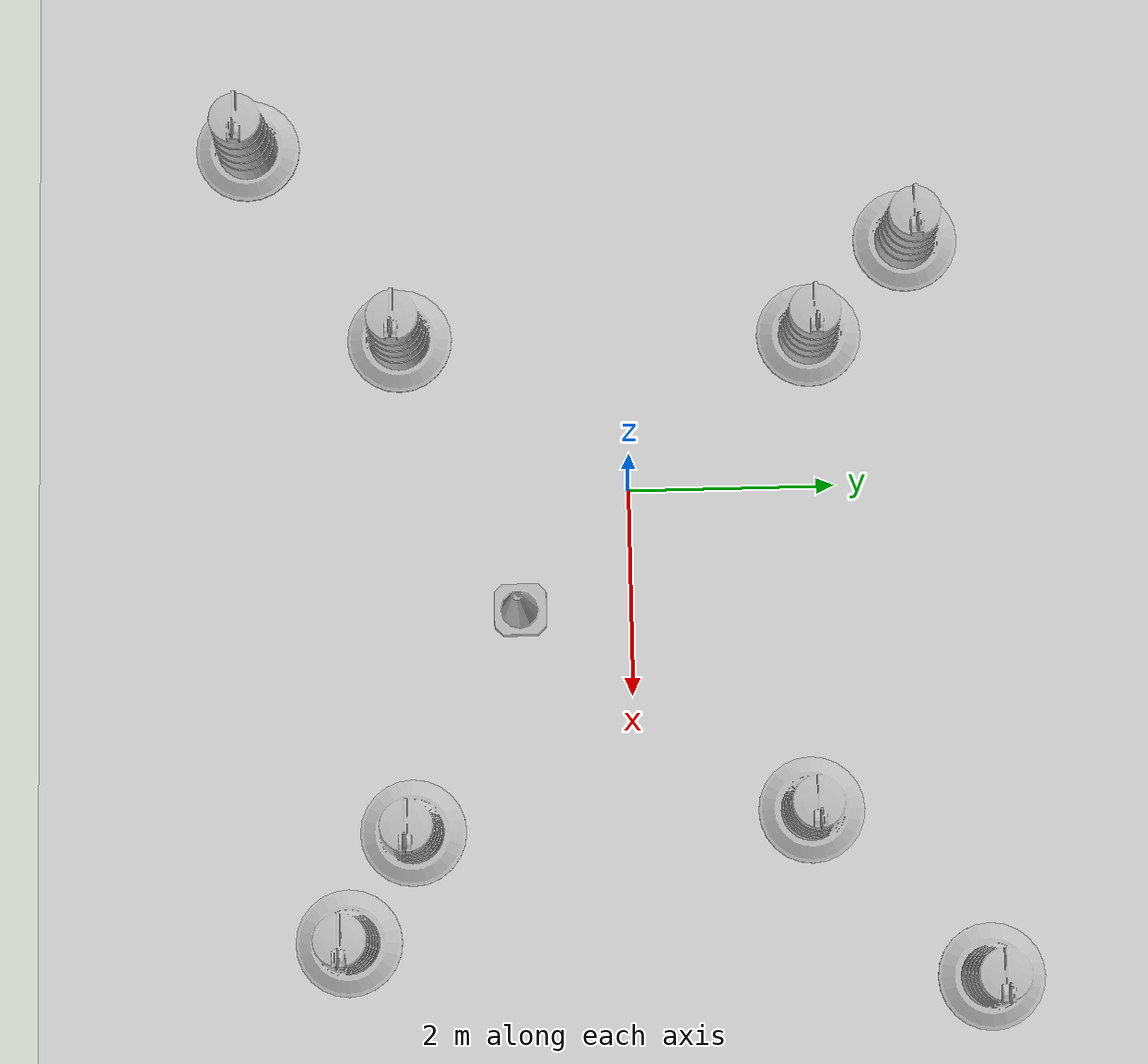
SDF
<sdf version="1.7">
 <world name="default">
  <light name="sun" type="directional">
   <pose>0 0 10 0 -0 0</pose>
   <diffuse>0.8 0.8 0.8 1</diffuse>
   <specular>0.2 0.2 0.2 1</specular>
   <attenuation>
    <range>1000</range>
    <constant>0.9</constant>
    <linear>0.01</linear>
    <quadratic>0.001</quadratic>
   </attenuation>
   <direction>-0.5 0.1 -0.9</direction>
   <spot><inner_angle>0</inner_angle><outer_angle>0</outer_angle><falloff>0</falloff></spot>
  </light>
  <model name="ground_plane">
   <static>1</static>
   <link name="link">
    <collision name="collision">
     <geometry><plane><normal>0 0 1</normal><size>100 100</size></plane></geometry>
     <surface>
      <contact><collide_bitmask>65535</collide_bitmask></contact>
      <friction><ode><mu>100</mu><mu2>50</mu2></ode></friction>
     </surface>
    </collision>
    <visual name="visual">
     <cast_shadows>0</cast_shadows>
     <geometry><plane><normal>0 0 1</normal><size>100 100</size></plane></geometry>
     <material>
      <script><uri>file://media/materials/scripts/gazebo.material</uri><name>Gazebo/Grey</name></script>
     </material>
    </visual>
   </link>
  </model>
  <gravity>0 0 -9.8</gravity>
  <magnetic_field>6e-06 2.3e-05 -4.2e-05</magnetic_field>
  <atmosphere type="adiabatic"/>
  <physics type="ode">
   <max_step_size>0.001</max_step_size>
   <real_time_factor>1</real_time_factor>
   <real_time_update_rate>1000</real_time_update_rate>
  </physics>
  <scene><ambient>0.4 0.4 0.4 1</ambient><background>0.7 0.7 0.7 1</background><shadows>1</shadows></scene>
  <audio><device>default</device></audio>
  <spherical_coordinates>
   <surface_model>EARTH_WGS84</surface_model>
   <latitude_deg>0</latitude_deg>
   <longitude_deg>0</longitude_deg>
   <elevation>0</elevation>
   <heading_deg>0</heading_deg>
  </spherical_coordinates>
  <model name="Construction Barrel">
   <link name="link">
    <inertial>
     <pose>0 0 0.4 0 -0 0</pose>
     <mass>500</mass>
     <inertia><ixx>51.2096</ixx><iyy>51.2096</iyy><izz>25</izz><ixy>0</ixy><ixz>0</ixz><iyz>0</iyz></inertia>
    </inertial>
    <collision name="collision">
     <geometry><mesh><uri>model://construction_barrel/meshes/construction_barrel.dae</uri></mesh></geometry>
    </collision>
    <visual name="visual">
     <geometry><mesh><uri>model://construction_barrel/meshes/construction_barrel.dae</uri></mesh></geometry>
    </visual>
   </link>
   <pose>-2.42444 2.77871 -2e-06 1e-06 8e-06 -1.9e-05</pose>
  </model>
  <model name="Construction Barrel_0">
   <link name="link">
    <inertial>
     <pose>0 0 0.4 0 -0 0</pose>
     <mass>500</mass>
     <inertia><ixx>51.2096</ixx><iyy>51.2096</iyy><izz>25</izz><ixy>0</ixy><ixz>0</ixz><iyz>0</iyz></inertia>
    </inertial>
    <collision name="collision">
     <geometry><mesh><uri>model://construction_barrel/meshes/construction_barrel.dae</uri></mesh></geometry>
    </collision>
    <visual name="visual">
     <geometry><mesh><uri>model://construction_barrel/meshes/construction_barrel.dae</uri></mesh></geometry>
    </visual>
   </link>
   <pose>-1.49601 1.80227 -4e-06 -3e-06 -1e-05 -1.6e-05</pose>
  </model>
  <model name="Construction Cone">
   <link name="link">
    <collision name="collision">
     <geometry>
      <mesh><scale>10 10 10</scale><uri>model://construction_cone/meshes/construction_cone.dae</uri></mesh>
     </geometry>
    </collision>
    <visual name="visual">
     <geometry>
      <mesh><scale>10 10 10</scale><uri>model://construction_cone/meshes/construction_cone.dae</uri></mesh>
     </geometry>
    </visual>
    <inertial>
     <inertia><ixx>1</ixx><ixy>0</ixy><ixz>0</ixz><iyy>1</iyy><iyz>0</iyz><izz>1</izz></inertia>
     <mass>1</mass>
    </inertial>
   </link>
   <pose>1.15136 -1.06539 -0 -0 -0 -0</pose>
  </model>
  <model name="Construction Barrel_1">
   <link name="link">
    <inertial>
     <pose>0 0 0.4 0 -0 0</pose>
     <mass>500</mass>
     <inertia><ixx>51.2096</ixx><iyy>51.2096</iyy><izz>25</izz><ixy>0</ixy><ixz>0</ixz><iyz>0</iyz></inertia>
    </inertial>
    <collision name="collision">
     <geometry><mesh><uri>model://construction_barrel/meshes/construction_barrel.dae</uri></mesh></geometry>
    </collision>
    <visual name="visual">
     <geometry><mesh><uri>model://construction_barrel/meshes/construction_barrel.dae</uri></mesh></geometry>
    </visual>
   </link>
   <pose>-1.5307 -2.19864 -1e-06 3e-06 7e-06 -1.4e-05</pose>
  </model>
  <model name="Construction Barrel_3">
   <link name="link">
    <inertial>
     <pose>0 0 0.4 0 -0 0</pose>
     <mass>500</mass>
     <inertia><ixx>51.2096</ixx><iyy>51.2096</iyy><izz>25</izz><ixy>0</ixy><ixz>0</ixz><iyz>0</iyz></inertia>
    </inertial>
    <collision name="collision">
     <geometry><mesh><uri>model://construction_barrel/meshes/construction_barrel.dae</uri></mesh></geometry>
    </collision>
    <visual name="visual">
     <geometry><mesh><uri>model://construction_barrel/meshes/construction_barrel.dae</uri></mesh></geometry>
    </visual>
   </link>
   <pose>3.14256 1.68659 -2e-06 4e-06 9e-06 -1.1e-05</pose>
  </model>
  <model name="Construction Barrel_4">
   <link name="link">
    <inertial>
     <pose>0 0 0.4 0 -0 0</pose>
     <mass>500</mass>
     <inertia><ixx>51.2096</ixx><iyy>51.2096</iyy><izz>25</izz><ixy>0</ixy><ixz>0</ixz><iyz>0</iyz></inertia>
    </inertial>
    <collision name="collision">
     <geometry><mesh><uri>model://construction_barrel/meshes/construction_barrel.dae</uri></mesh></geometry>
    </collision>
    <visual name="visual">
     <geometry><mesh><uri>model://construction_barrel/meshes/construction_barrel.dae</uri></mesh></geometry>
    </visual>
   </link>
   <pose>4.76282 3.34646 -2e-06 -7e-06 -4e-06 -1e-05</pose>
  </model>
  <model name="Construction Barrel_5">
   <link name="link">
    <inertial>
     <pose>0 0 0.4 0 -0 0</pose>
     <mass>500</mass>
     <inertia><ixx>51.2096</ixx><iyy>51.2096</iyy><izz>25</izz><ixy>0</ixy><ixz>0</ixz><iyz>0</iyz></inertia>
    </inertial>
    <collision name="collision">
     <geometry><mesh><uri>model://construction_barrel/meshes/construction_barrel.dae</uri></mesh></geometry>
    </collision>
    <visual name="visual">
     <geometry><mesh><uri>model://construction_barrel/meshes/construction_barrel.dae</uri></mesh></geometry>
    </visual>
   </link>
   <pose>3.27527 -2.12914 -1e-06 1e-06 -2e-06 -9e-06</pose>
  </model>
  <model name="Construction Barrel_6">
   <link name="link">
    <inertial>
     <pose>0 0 0.4 0 -0 0</pose>
     <mass>500</mass>
     <inertia><ixx>51.2096</ixx><iyy>51.2096</iyy><izz>25</izz><ixy>0</ixy><ixz>0</ixz><iyz>0</iyz></inertia>
    </inertial>
    <collision name="collision">
     <geometry><mesh><uri>model://construction_barrel/meshes/construction_barrel.dae</uri></mesh></geometry>
    </collision>
    <visual name="visual">
     <geometry><mesh><uri>model://construction_barrel/meshes/construction_barrel.dae</uri></mesh></geometry>
    </visual>
   </link>
   <pose>4.30949 -2.75595 0 0 0 -6e-06</pose>
  </model>
  <model name="Construction Barrel_2">
   <link name="link">
    <inertial>
     <pose>0 0 0.4 0 -0 0</pose>
     <mass>500</mass>
     <inertia><ixx>51.2096</ixx><iyy>51.2096</iyy><izz>25</izz><ixy>0</ixy><ixz>0</ixz><iyz>0</iyz></inertia>
    </inertial>
    <collision name="collision">
     <geometry><mesh><uri>model://construction_barrel/meshes/construction_barrel.dae</uri></mesh></geometry>
    </collision>
    <visual name="visual">
     <geometry><mesh><uri>model://construction_barrel/meshes/construction_barrel.dae</uri></mesh></geometry>
    </visual>
   </link>
   <pose>-3.48266 -3.66881 -1e-06 3e-06 -2e-06 -2e-06</pose>
  </model>
 </world>
</sdf>
